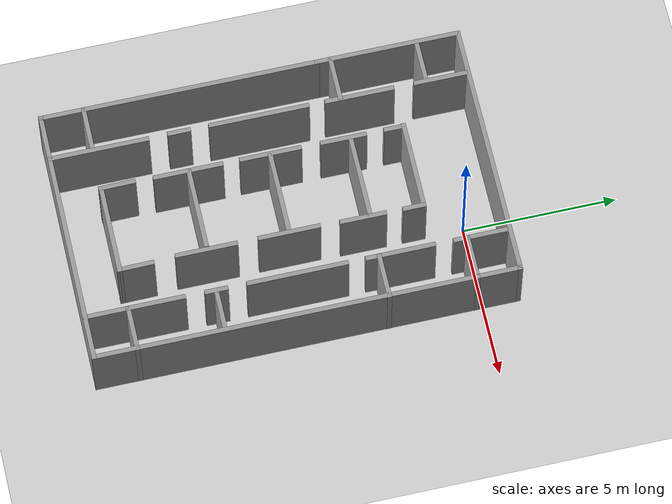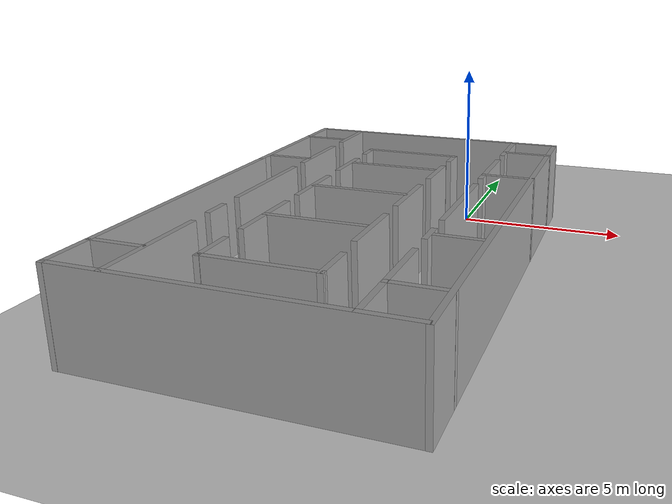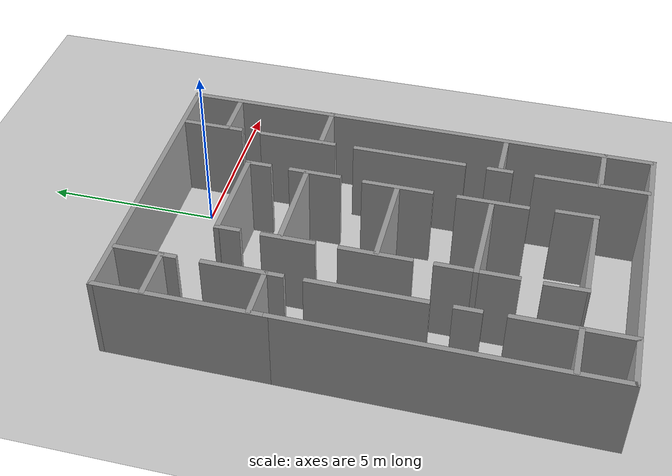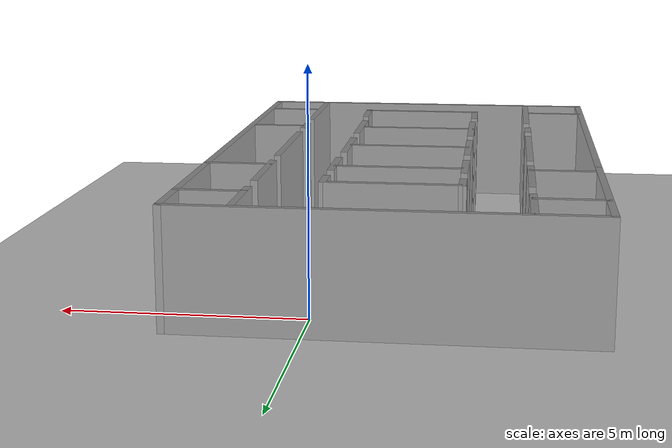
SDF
<sdf version="1.7">
 <world name="default">
  <light name="sun" type="directional">
   <pose>0 0 10 0 -0 0</pose>
   <diffuse>0.8 0.8 0.8 1</diffuse>
   <specular>0.2 0.2 0.2 1</specular>
   <attenuation>
    <range>1000</range>
    <constant>0.9</constant>
    <linear>0.01</linear>
    <quadratic>0.001</quadratic>
   </attenuation>
   <direction>-0.5 0.1 -0.9</direction>
   <spot><inner_angle>0</inner_angle><outer_angle>0</outer_angle><falloff>0</falloff></spot>
  </light>
  <model name="ground_plane">
   <static>1</static>
   <link name="link">
    <collision name="collision">
     <geometry><plane><normal>0 0 1</normal><size>100 100</size></plane></geometry>
     <surface>
      <contact><collide_bitmask>65535</collide_bitmask></contact>
      <friction><ode><mu>100</mu><mu2>50</mu2></ode></friction>
     </surface>
    </collision>
    <visual name="visual">
     <cast_shadows>0</cast_shadows>
     <geometry><plane><normal>0 0 1</normal><size>100 100</size></plane></geometry>
     <material>
      <script><uri>file://media/materials/scripts/gazebo.material</uri><name>Gazebo/Grey</name></script>
     </material>
    </visual>
   </link>
  </model>
  <gravity>0 0 -9.8</gravity>
  <magnetic_field>6e-06 2.3e-05 -4.2e-05</magnetic_field>
  <atmosphere type="adiabatic"/>
  <physics type="ode">
   <max_step_size>0.001</max_step_size>
   <real_time_factor>1</real_time_factor>
   <real_time_update_rate>1000</real_time_update_rate>
  </physics>
  <scene><ambient>0.4 0.4 0.4 1</ambient><background>0.7 0.7 0.7 1</background><shadows>1</shadows></scene>
  <spherical_coordinates>
   <surface_model>EARTH_WGS84</surface_model>
   <latitude_deg>0</latitude_deg>
   <longitude_deg>0</longitude_deg>
   <elevation>0</elevation>
   <heading_deg>0</heading_deg>
  </spherical_coordinates>
  <model name="12.16.21">
   <pose>-0.685976 -5.62116 0 0 -0 0</pose>
   <link name="Wall_0">
    <collision name="Wall_0_Collision">
     <geometry><box><size>4.75 0.15 2.5</size></box></geometry>
     <pose>0 0 1.25 0 -0 0</pose>
    </collision>
    <visual name="Wall_0_Visual">
     <pose>0 0 1.25 0 -0 0</pose>
     <geometry><box><size>4.75 0.15 2.5</size></box></geometry>
     <material>
      <script><uri>file://media/materials/scripts/gazebo.material</uri><name>Gazebo/Grey</name></script>
      <ambient>1 1 1 1</ambient>
     </material>
     <meta><layer>0</layer></meta>
    </visual>
    <pose>-5.00755 4.46259 0 0 -0 -1.5708</pose>
   </link>
   <link name="Wall_1">
    <collision name="Wall_1_Collision">
     <geometry><box><size>9.07519 0.15 2.5</size></box></geometry>
     <pose>0 0 1.25 0 -0 0</pose>
    </collision>
    <visual name="Wall_1_Visual">
     <pose>0 0 1.25 0 -0 0</pose>
     <geometry><box><size>9.07519 0.15 2.5</size></box></geometry>
     <material>
      <script><uri>file://media/materials/scripts/gazebo.material</uri><name>Gazebo/Grey</name></script>
      <ambient>1 1 1 1</ambient>
     </material>
     <meta><layer>0</layer></meta>
    </visual>
    <pose>-5.00755 -2.3 0 0 -0 -1.5708</pose>
   </link>
   <link name="Wall_10">
    <collision name="Wall_10_Collision">
     <geometry><box><size>1.75 0.15 2.5</size></box></geometry>
     <pose>0 0 1.25 0 -0 0</pose>
    </collision>
    <visual name="Wall_10_Visual">
     <pose>0 0 1.25 0 -0 0</pose>
     <geometry><box><size>1.75 0.15 2.5</size></box></geometry>
     <material>
      <script><uri>file://media/materials/scripts/gazebo.material</uri><name>Gazebo/Grey</name></script>
      <ambient>1 1 1 1</ambient>
     </material>
     <meta><layer>0</layer></meta>
    </visual>
    <pose>1.98662 5.81989 0 0 -0 -1.5708</pose>
   </link>
   <link name="Wall_12">
    <collision name="Wall_12_Collision">
     <geometry><box><size>1.5 0.15 2.5</size></box></geometry>
     <pose>0 0 1.25 0 -0 0</pose>
    </collision>
    <visual name="Wall_12_Visual">
     <pose>0 0 1.25 0 -0 0</pose>
     <geometry><box><size>1.5 0.15 2.5</size></box></geometry>
     <material>
      <script><uri>file://media/materials/scripts/gazebo.material</uri><name>Gazebo/Grey</name></script>
      <ambient>1 1 1 1</ambient>
     </material>
     <meta><layer>0</layer></meta>
    </visual>
    <pose>2.67312 5.40089 0 0 -0 0</pose>
   </link>
   <link name="Wall_14">
    <collision name="Wall_14_Collision">
     <geometry><box><size>1.5 0.15 2.5</size></box></geometry>
     <pose>0 0 1.25 0 -0 0</pose>
    </collision>
    <visual name="Wall_14_Visual">
     <pose>0 0 1.25 0 -0 0</pose>
     <geometry><box><size>1.5 0.15 2.5</size></box></geometry>
     <material>
      <script><uri>file://media/materials/scripts/gazebo.material</uri><name>Gazebo/Grey</name></script>
      <ambient>1 1 1 1</ambient>
     </material>
     <meta><layer>0</layer></meta>
    </visual>
    <pose>2.67546 2.57989 0 0 -0 0</pose>
   </link>
   <link name="Wall_16">
    <collision name="Wall_16_Collision">
     <geometry><box><size>2.25 0.15 2.5</size></box></geometry>
     <pose>0 0 1.25 0 -0 0</pose>
    </collision>
    <visual name="Wall_16_Visual">
     <pose>0 0 1.25 0 -0 0</pose>
     <geometry><box><size>2.25 0.15 2.5</size></box></geometry>
     <material>
      <script><uri>file://media/materials/scripts/gazebo.material</uri><name>Gazebo/Grey</name></script>
      <ambient>1 1 1 1</ambient>
     </material>
     <meta><layer>0</layer></meta>
    </visual>
    <pose>1.97968 3.26284 0 0 -0 -1.5708</pose>
   </link>
   <link name="Wall_18">
    <collision name="Wall_18_Collision">
     <geometry><box><size>3.25 0.15 2.5</size></box></geometry>
     <pose>0 0 1.25 0 -0 0</pose>
    </collision>
    <visual name="Wall_18_Visual">
     <pose>0 0 1.25 0 -0 0</pose>
     <geometry><box><size>3.25 0.15 2.5</size></box></geometry>
     <material>
      <script><uri>file://media/materials/scripts/gazebo.material</uri><name>Gazebo/Grey</name></script>
      <ambient>1 1 1 1</ambient>
     </material>
     <meta><layer>0</layer></meta>
    </visual>
    <pose>1.98314 -0.021525 0 0 -0 -1.5708</pose>
   </link>
   <link name="Wall_2">
    <collision name="Wall_2_Collision">
     <geometry><box><size>8.5 0.15 2.5</size></box></geometry>
     <pose>0 0 1.25 0 -0 0</pose>
    </collision>
    <visual name="Wall_2_Visual">
     <pose>0 0 1.25 0 -0 0</pose>
     <geometry><box><size>8.5 0.15 2.5</size></box></geometry>
     <material>
      <script><uri>file://media/materials/scripts/gazebo.material</uri><name>Gazebo/Grey</name></script>
      <ambient>1 1 1 1</ambient>
     </material>
     <meta><layer>0</layer></meta>
    </visual>
    <pose>-0.832548 -6.75883 0 0 -0 0</pose>
   </link>
   <link name="Wall_24">
    <collision name="Wall_24_Collision">
     <geometry><box><size>1.25 0.15 2.5</size></box></geometry>
     <pose>0 0 1.25 0 -0 0</pose>
    </collision>
    <visual name="Wall_24_Visual">
     <pose>0 0 1.25 0 -0 0</pose>
     <geometry><box><size>1.25 0.15 2.5</size></box></geometry>
     <material>
      <script><uri>file://media/materials/scripts/gazebo.material</uri><name>Gazebo/Grey</name></script>
      <ambient>1 1 1 1</ambient>
     </material>
     <meta><layer>0</layer></meta>
    </visual>
    <pose>2.65195 -2.61174 0 0 -0 3.14159</pose>
   </link>
   <link name="Wall_26">
    <collision name="Wall_26_Collision">
     <geometry><box><size>0.75 0.15 2.5</size></box></geometry>
     <pose>0 0 1.25 0 -0 0</pose>
    </collision>
    <visual name="Wall_26_Visual">
     <pose>0 0 1.25 0 -0 0</pose>
     <geometry><box><size>0.75 0.15 2.5</size></box></geometry>
     <material>
      <script><uri>file://media/materials/scripts/gazebo.material</uri><name>Gazebo/Grey</name></script>
      <ambient>1 1 1 1</ambient>
     </material>
     <meta><layer>0</layer></meta>
    </visual>
    <pose>1.98525 -2.60756 0 0 -0 -1.5708</pose>
   </link>
   <link name="Wall_3">
    <collision name="Wall_3_Collision">
     <geometry><box><size>13.6752 0.15 2.5</size></box></geometry>
     <pose>0 0 1.25 0 -0 0</pose>
    </collision>
    <visual name="Wall_3_Visual">
     <pose>0 0 1.25 0 -0 0</pose>
     <geometry><box><size>13.6752 0.15 2.5</size></box></geometry>
     <material>
      <script><uri>file://media/materials/scripts/gazebo.material</uri><name>Gazebo/Grey</name></script>
      <ambient>1 1 1 1</ambient>
     </material>
     <meta><layer>0</layer></meta>
    </visual>
    <pose>3.34245 -0 0 0 -0 1.5708</pose>
   </link>
   <link name="Wall_4">
    <collision name="Wall_4_Collision">
     <geometry><box><size>8.5 0.15 2.5</size></box></geometry>
     <pose>0 0 1.25 0 -0 0</pose>
    </collision>
    <visual name="Wall_4_Visual">
     <pose>0 0 1.25 0 -0 0</pose>
     <geometry><box><size>8.5 0.15 2.5</size></box></geometry>
     <material>
      <script><uri>file://media/materials/scripts/gazebo.material</uri><name>Gazebo/Grey</name></script>
      <ambient>1 1 1 1</ambient>
     </material>
     <meta><layer>0</layer></meta>
    </visual>
    <pose>-0.832548 6.76259 0 0 -0 3.14159</pose>
   </link>
   <link name="Wall_45">
    <collision name="Wall_45_Collision">
     <geometry><box><size>1.5 0.15 2.5</size></box></geometry>
     <pose>0 0 1.25 0 -0 0</pose>
    </collision>
    <visual name="Wall_45_Visual">
     <pose>0 0 1.25 0 -0 0</pose>
     <geometry><box><size>1.5 0.15 2.5</size></box></geometry>
     <material>
      <script><uri>file://media/materials/scripts/gazebo.material</uri><name>Gazebo/Grey</name></script>
      <ambient>1 1 1 1</ambient>
     </material>
     <meta><layer>0</layer></meta>
    </visual>
    <pose>2.67004 -5.39607 0 0 -0 0</pose>
   </link>
   <link name="Wall_47">
    <collision name="Wall_47_Collision">
     <geometry><box><size>3.25 0.15 2.5</size></box></geometry>
     <pose>0 0 1.25 0 -0 0</pose>
    </collision>
    <visual name="Wall_47_Visual">
     <pose>0 0 1.25 0 -0 0</pose>
     <geometry><box><size>3.25 0.15 2.5</size></box></geometry>
     <material>
      <script><uri>file://media/materials/scripts/gazebo.material</uri><name>Gazebo/Grey</name></script>
      <ambient>1 1 1 1</ambient>
     </material>
     <meta><layer>0</layer></meta>
    </visual>
    <pose>1.97895 -5.19783 0 0 -0 -1.5708</pose>
   </link>
   <link name="Wall_49">
    <collision name="Wall_49_Collision">
     <geometry><box><size>1.19092 0.15 2.5</size></box></geometry>
     <pose>0 0 1.25 0 -0 0</pose>
    </collision>
    <visual name="Wall_49_Visual">
     <pose>0 0 1.25 0 -0 0</pose>
     <geometry><box><size>1.19092 0.15 2.5</size></box></geometry>
     <material>
      <script><uri>file://media/materials/scripts/gazebo.material</uri><name>Gazebo/Grey</name></script>
      <ambient>1 1 1 1</ambient>
     </material>
     <meta><layer>0</layer></meta>
    </visual>
    <pose>-2.21292 -4.88307 0 0 -0 -1.55975</pose>
   </link>
   <link name="Wall_50">
    <collision name="Wall_50_Collision">
     <geometry><box><size>3 0.15 2.5</size></box></geometry>
     <pose>0 0 1.25 0 -0 0</pose>
    </collision>
    <visual name="Wall_50_Visual">
     <pose>0 0 1.25 0 -0 0</pose>
     <geometry><box><size>3 0.15 2.5</size></box></geometry>
     <material>
      <script><uri>file://media/materials/scripts/gazebo.material</uri><name>Gazebo/Grey</name></script>
      <ambient>1 1 1 1</ambient>
     </material>
     <meta><layer>0</layer></meta>
    </visual>
    <pose>-0.782166 -5.392 0 0 -0 0</pose>
   </link>
   <link name="Wall_51">
    <collision name="Wall_51_Collision">
     <geometry><box><size>1.19092 0.15 2.5</size></box></geometry>
     <pose>0 0 1.25 0 -0 0</pose>
    </collision>
    <visual name="Wall_51_Visual">
     <pose>0 0 1.25 0 -0 0</pose>
     <geometry><box><size>1.19092 0.15 2.5</size></box></geometry>
     <material>
      <script><uri>file://media/materials/scripts/gazebo.material</uri><name>Gazebo/Grey</name></script>
      <ambient>1 1 1 1</ambient>
     </material>
     <meta><layer>0</layer></meta>
    </visual>
    <pose>0.637084 -4.88307 0 0 -0 1.58184</pose>
   </link>
   <link name="Wall_57">
    <collision name="Wall_57_Collision">
     <geometry><box><size>0.72355 0.15 2.5</size></box></geometry>
     <pose>0 0 1.25 0 -0 0</pose>
    </collision>
    <visual name="Wall_57_Visual">
     <pose>0 0 1.25 0 -0 0</pose>
     <geometry><box><size>0.72355 0.15 2.5</size></box></geometry>
     <material>
      <script><uri>file://media/materials/scripts/gazebo.material</uri><name>Gazebo/Grey</name></script>
      <ambient>1 1 1 1</ambient>
     </material>
     <meta><layer>0</layer></meta>
    </visual>
    <pose>-2.20378 4.05579 0 0 -0 1.5708</pose>
   </link>
   <link name="Wall_58">
    <collision name="Wall_58_Collision">
     <geometry><box><size>2.94713 0.15 2.5</size></box></geometry>
     <pose>0 0 1.25 0 -0 0</pose>
    </collision>
    <visual name="Wall_58_Visual">
     <pose>0 0 1.25 0 -0 0</pose>
     <geometry><box><size>2.94713 0.15 2.5</size></box></geometry>
     <material>
      <script><uri>file://media/materials/scripts/gazebo.material</uri><name>Gazebo/Grey</name></script>
      <ambient>1 1 1 1</ambient>
     </material>
     <meta><layer>0</layer></meta>
    </visual>
    <pose>-0.818453 4.33595 0 0 -0 -0.004728</pose>
   </link>
   <link name="Wall_59">
    <collision name="Wall_59_Collision">
     <geometry><box><size>0.75 0.15 2.5</size></box></geometry>
     <pose>0 0 1.25 0 -0 0</pose>
    </collision>
    <visual name="Wall_59_Visual">
     <pose>0 0 1.25 0 -0 0</pose>
     <geometry><box><size>0.75 0.15 2.5</size></box></geometry>
     <material>
      <script><uri>file://media/materials/scripts/gazebo.material</uri><name>Gazebo/Grey</name></script>
      <ambient>1 1 1 1</ambient>
     </material>
     <meta><layer>0</layer></meta>
    </visual>
    <pose>0.593321 4.02934 0 0 -0 -1.5708</pose>
   </link>
   <link name="Wall_6">
    <collision name="Wall_6_Collision">
     <geometry><box><size>1.75 0.15 2.5</size></box></geometry>
     <pose>0 0 1.25 0 -0 0</pose>
    </collision>
    <visual name="Wall_6_Visual">
     <pose>0 0 1.25 0 -0 0</pose>
     <geometry><box><size>1.75 0.15 2.5</size></box></geometry>
     <material>
      <script><uri>file://media/materials/scripts/gazebo.material</uri><name>Gazebo/Grey</name></script>
      <ambient>1 1 1 1</ambient>
     </material>
     <meta><layer>0</layer></meta>
    </visual>
    <pose>-3.58406 5.85946 0 0 -0 -1.5708</pose>
   </link>
   <link name="Wall_61">
    <collision name="Wall_61_Collision">
     <geometry><box><size>2.25 0.15 2.5</size></box></geometry>
     <pose>0 0 1.25 0 -0 0</pose>
    </collision>
    <visual name="Wall_61_Visual">
     <pose>0 0 1.25 0 -0 0</pose>
     <geometry><box><size>2.25 0.15 2.5</size></box></geometry>
     <material>
      <script><uri>file://media/materials/scripts/gazebo.material</uri><name>Gazebo/Grey</name></script>
      <ambient>1 1 1 1</ambient>
     </material>
     <meta><layer>0</layer></meta>
    </visual>
    <pose>-3.5807 3.22844 0 0 -0 -1.5708</pose>
   </link>
   <link name="Wall_63">
    <collision name="Wall_63_Collision">
     <geometry><box><size>1.5 0.15 2.5</size></box></geometry>
     <pose>0 0 1.25 0 -0 0</pose>
    </collision>
    <visual name="Wall_63_Visual">
     <pose>0 0 1.25 0 -0 0</pose>
     <geometry><box><size>1.5 0.15 2.5</size></box></geometry>
     <material>
      <script><uri>file://media/materials/scripts/gazebo.material</uri><name>Gazebo/Grey</name></script>
      <ambient>1 1 1 1</ambient>
     </material>
     <meta><layer>0</layer></meta>
    </visual>
    <pose>-4.29353 2.60901 0 0 -0 0</pose>
   </link>
   <link name="Wall_65">
    <collision name="Wall_65_Collision">
     <geometry><box><size>3.25 0.15 2.5</size></box></geometry>
     <pose>0 0 1.25 0 -0 0</pose>
    </collision>
    <visual name="Wall_65_Visual">
     <pose>0 0 1.25 0 -0 0</pose>
     <geometry><box><size>3.25 0.15 2.5</size></box></geometry>
     <material>
      <script><uri>file://media/materials/scripts/gazebo.material</uri><name>Gazebo/Grey</name></script>
      <ambient>1 1 1 1</ambient>
     </material>
     <meta><layer>0</layer></meta>
    </visual>
    <pose>-3.5807 -0.027119 0 0 -0 -1.5708</pose>
   </link>
   <link name="Wall_67">
    <collision name="Wall_67_Collision">
     <geometry><box><size>0.75 0.15 2.5</size></box></geometry>
     <pose>0 0 1.25 0 -0 0</pose>
    </collision>
    <visual name="Wall_67_Visual">
     <pose>0 0 1.25 0 -0 0</pose>
     <geometry><box><size>0.75 0.15 2.5</size></box></geometry>
     <material>
      <script><uri>file://media/materials/scripts/gazebo.material</uri><name>Gazebo/Grey</name></script>
      <ambient>1 1 1 1</ambient>
     </material>
     <meta><layer>0</layer></meta>
    </visual>
    <pose>-3.58349 -2.60492 0 0 -0 -1.5708</pose>
   </link>
   <link name="Wall_69">
    <collision name="Wall_69_Collision">
     <geometry><box><size>2.25 0.15 2.5</size></box></geometry>
     <pose>0 0 1.25 0 -0 0</pose>
    </collision>
    <visual name="Wall_69_Visual">
     <pose>0 0 1.25 0 -0 0</pose>
     <geometry><box><size>2.25 0.15 2.5</size></box></geometry>
     <material>
      <script><uri>file://media/materials/scripts/gazebo.material</uri><name>Gazebo/Grey</name></script>
      <ambient>1 1 1 1</ambient>
     </material>
     <meta><layer>0</layer></meta>
    </visual>
    <pose>-2.19439 -2.60945 0 0 -0 -1.5708</pose>
   </link>
   <link name="Wall_71">
    <collision name="Wall_71_Collision">
     <geometry><box><size>2.75 0.15 2.5</size></box></geometry>
     <pose>0 0 1.25 0 -0 0</pose>
    </collision>
    <visual name="Wall_71_Visual">
     <pose>0 0 1.25 0 -0 0</pose>
     <geometry><box><size>2.75 0.15 2.5</size></box></geometry>
     <material>
      <script><uri>file://media/materials/scripts/gazebo.material</uri><name>Gazebo/Grey</name></script>
      <ambient>1 1 1 1</ambient>
     </material>
     <meta><layer>0</layer></meta>
    </visual>
    <pose>-0.894393 -2.591 0 0 -0 0</pose>
   </link>
   <link name="Wall_73">
    <collision name="Wall_73_Collision">
     <geometry><box><size>2 0.15 2.5</size></box></geometry>
     <pose>0 0 1.25 0 -0 0</pose>
    </collision>
    <visual name="Wall_73_Visual">
     <pose>0 0 1.25 0 -0 0</pose>
     <geometry><box><size>2 0.15 2.5</size></box></geometry>
     <material>
      <script><uri>file://media/materials/scripts/gazebo.material</uri><name>Gazebo/Grey</name></script>
      <ambient>1 1 1 1</ambient>
     </material>
     <meta><layer>0</layer></meta>
    </visual>
    <pose>0.569632 -2.6167 0 0 -0 -1.5708</pose>
   </link>
   <link name="Wall_75">
    <collision name="Wall_75_Collision">
     <geometry><box><size>2 0.15 2.5</size></box></geometry>
     <pose>0 0 1.25 0 -0 0</pose>
    </collision>
    <visual name="Wall_75_Visual">
     <pose>0 0 1.25 0 -0 0</pose>
     <geometry><box><size>2 0.15 2.5</size></box></geometry>
     <material>
      <script><uri>file://media/materials/scripts/gazebo.material</uri><name>Gazebo/Grey</name></script>
      <ambient>1 1 1 1</ambient>
     </material>
     <meta><layer>0</layer></meta>
    </visual>
    <pose>-2.19986 0.038843 0 0 -0 -1.5708</pose>
   </link>
   <link name="Wall_77">
    <collision name="Wall_77_Collision">
     <geometry><box><size>2.75 0.15 2.5</size></box></geometry>
     <pose>0 0 1.25 0 -0 0</pose>
    </collision>
    <visual name="Wall_77_Visual">
     <pose>0 0 1.25 0 -0 0</pose>
     <geometry><box><size>2.75 0.15 2.5</size></box></geometry>
     <material>
      <script><uri>file://media/materials/scripts/gazebo.material</uri><name>Gazebo/Grey</name></script>
      <ambient>1 1 1 1</ambient>
     </material>
     <meta><layer>0</layer></meta>
    </visual>
    <pose>-0.833739 0.024868 0 0 -0 0</pose>
   </link>
   <link name="Wall_79">
    <collision name="Wall_79_Collision">
     <geometry><box><size>2 0.15 2.5</size></box></geometry>
     <pose>0 0 1.25 0 -0 0</pose>
    </collision>
    <visual name="Wall_79_Visual">
     <pose>0 0 1.25 0 -0 0</pose>
     <geometry><box><size>2 0.15 2.5</size></box></geometry>
     <material>
      <script><uri>file://media/materials/scripts/gazebo.material</uri><name>Gazebo/Grey</name></script>
      <ambient>1 1 1 1</ambient>
     </material>
     <meta><layer>0</layer></meta>
    </visual>
    <pose>0.564161 0.025618 0 0 -0 -1.5708</pose>
   </link>
   <link name="Wall_8">
    <collision name="Wall_8_Collision">
     <geometry><box><size>1.5 0.15 2.5</size></box></geometry>
     <pose>0 0 1.25 0 -0 0</pose>
    </collision>
    <visual name="Wall_8_Visual">
     <pose>0 0 1.25 0 -0 0</pose>
     <geometry><box><size>1.5 0.15 2.5</size></box></geometry>
     <material>
      <script><uri>file://media/materials/scripts/gazebo.material</uri><name>Gazebo/Grey</name></script>
      <ambient>1 1 1 1</ambient>
     </material>
     <meta><layer>0</layer></meta>
    </visual>
    <pose>-4.29588 5.40089 0 0 -0 0</pose>
   </link>
   <link name="Wall_81">
    <collision name="Wall_81_Collision">
     <geometry><box><size>1.5 0.15 2.5</size></box></geometry>
     <pose>0 0 1.25 0 -0 0</pose>
    </collision>
    <visual name="Wall_81_Visual">
     <pose>0 0 1.25 0 -0 0</pose>
     <geometry><box><size>1.5 0.15 2.5</size></box></geometry>
     <material>
      <script><uri>file://media/materials/scripts/gazebo.material</uri><name>Gazebo/Grey</name></script>
      <ambient>1 1 1 1</ambient>
     </material>
     <meta><layer>0</layer></meta>
    </visual>
    <pose>-2.19986 2.39162 0 0 -0 -1.5708</pose>
   </link>
   <link name="Wall_83">
    <collision name="Wall_83_Collision">
     <geometry><box><size>2.75 0.15 2.5</size></box></geometry>
     <pose>0 0 1.25 0 -0 0</pose>
    </collision>
    <visual name="Wall_83_Visual">
     <pose>0 0 1.25 0 -0 0</pose>
     <geometry><box><size>2.75 0.15 2.5</size></box></geometry>
     <material>
      <script><uri>file://media/materials/scripts/gazebo.material</uri><name>Gazebo/Grey</name></script>
      <ambient>1 1 1 1</ambient>
     </material>
     <meta><layer>0</layer></meta>
    </visual>
    <pose>-0.794064 2.61697 0 0 -0 0</pose>
   </link>
   <link name="Wall_85">
    <collision name="Wall_85_Collision">
     <geometry><box><size>1.5 0.15 2.5</size></box></geometry>
     <pose>0 0 1.25 0 -0 0</pose>
    </collision>
    <visual name="Wall_85_Visual">
     <pose>0 0 1.25 0 -0 0</pose>
     <geometry><box><size>1.5 0.15 2.5</size></box></geometry>
     <material>
      <script><uri>file://media/materials/scripts/gazebo.material</uri><name>Gazebo/Grey</name></script>
      <ambient>1 1 1 1</ambient>
     </material>
     <meta><layer>0</layer></meta>
    </visual>
    <pose>0.590611 2.39162 0 0 -0 -1.5708</pose>
   </link>
   <link name="Wall_87">
    <collision name="Wall_87_Collision">
     <geometry><box><size>3.25 0.15 2.5</size></box></geometry>
     <pose>0 0 1.25 0 -0 0</pose>
    </collision>
    <visual name="Wall_87_Visual">
     <pose>0 0 1.25 0 -0 0</pose>
     <geometry><box><size>3.25 0.15 2.5</size></box></geometry>
     <material>
      <script><uri>file://media/materials/scripts/gazebo.material</uri><name>Gazebo/Grey</name></script>
      <ambient>1 1 1 1</ambient>
     </material>
     <meta><layer>0</layer></meta>
    </visual>
    <pose>-3.56169 -5.20119 0 0 -0 1.5708</pose>
   </link>
   <link name="Wall_89">
    <collision name="Wall_89_Collision">
     <geometry><box><size>1.5 0.15 2.5</size></box></geometry>
     <pose>0 0 1.25 0 -0 0</pose>
    </collision>
    <visual name="Wall_89_Visual">
     <pose>0 0 1.25 0 -0 0</pose>
     <geometry><box><size>1.5 0.15 2.5</size></box></geometry>
     <material>
      <script><uri>file://media/materials/scripts/gazebo.material</uri><name>Gazebo/Grey</name></script>
      <ambient>1 1 1 1</ambient>
     </material>
     <meta><layer>0</layer></meta>
    </visual>
    <pose>-4.29464 -5.38347 0 0 -0 0</pose>
   </link>
   <static>1</static>
  </model>
 </world>
</sdf>
